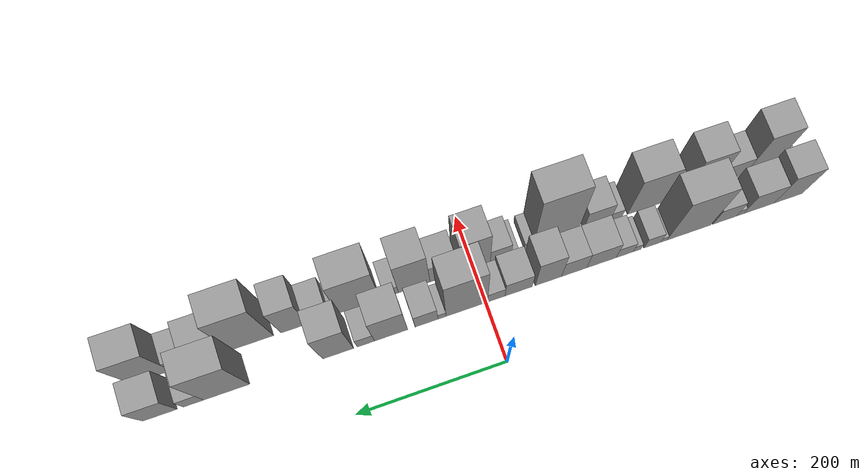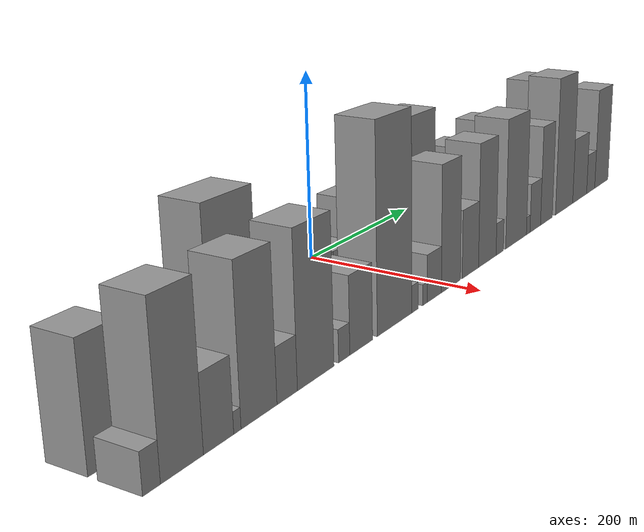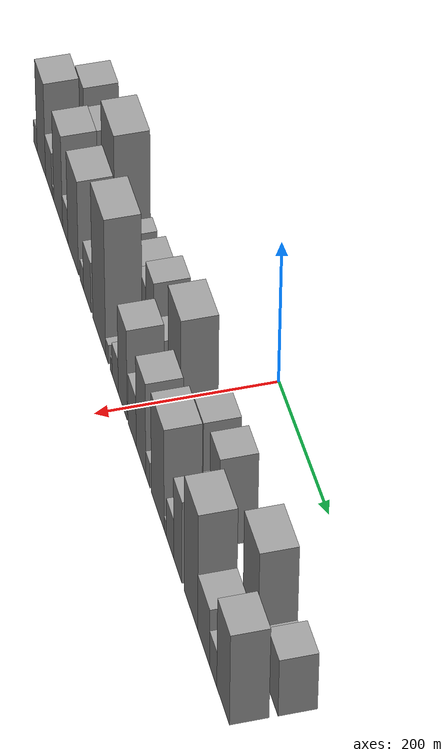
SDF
<sdf version="1.6">
 <world name="default">
  <scene>
   <sky><clouds><speed>12</speed></clouds></sky>
   <ambient>0.4 0.4 0.4 1</ambient>
   <background>0.7 0.7 0.7 1</background>
   <shadows>1</shadows>
  </scene>
  <gravity>0 0 -9.8066</gravity>
  <magnetic_field>6e-06 2.3e-05 -4.2e-05</magnetic_field>
  <physics default="0" name="default_physics" type="ode">
   <ode>
    <solver>
     <type>quick</type>
     <iters>10</iters>
     <sor>1.0</sor>
     <use_dynamic_moi_rescaling>0</use_dynamic_moi_rescaling>
    </solver>
    <constraints>
     <cfm>0</cfm>
     <erp>0.2</erp>
     <contact_max_correcting_vel>100</contact_max_correcting_vel>
     <contact_surface_layer>0.001</contact_surface_layer>
    </constraints>
   </ode>
   <max_step_size>0.004</max_step_size>
   <real_time_factor>1</real_time_factor>
   <real_time_update_rate>250</real_time_update_rate>
  </physics>
  <light name="sun" type="directional">
   <pose>0 0 10 0 0 0</pose>
   <diffuse>0.8 0.8 0.8 1</diffuse>
   <specular>0.2 0.2 0.2 1</specular>
   <attenuation>
    <range>1000</range>
    <constant>0.9</constant>
    <linear>0.01</linear>
    <quadratic>0.001</quadratic>
   </attenuation>
   <direction>-0.5 0.1 -0.9</direction>
  </light>
  <model name="building_1">
   <static>1</static>
   <pose>100.0000 -417.9932 0 0.000000 0.000000 0.000000</pose>
   <link name="link">
    <pose>0 0 51.00 0 0 0</pose>
    <collision name="collision"><geometry><box><size>40.0000 40.0137 102.0000</size></box></geometry></collision>
    <visual name="visual">
     <cast_shadows>0</cast_shadows>
     <geometry><box><size>40.0000 40.0137 102.0000</size></box></geometry>
     <material>
      <script>
       <uri>model://grey_wall/materials/scripts</uri>
       <uri>model://grey_wall/materials/textures</uri>
       <name>vrc/grey_wall</name>
      </script>
     </material>
    </visual>
   </link>
  </model>
  <model name="building_2">
   <static>1</static>
   <pose>100.0000 -376.3989 0 0.000000 0.000000 0.000000</pose>
   <link name="link">
    <pose>0 0 37.50 0 0 0</pose>
    <collision name="collision"><geometry><box><size>40.0000 43.1749 75.0000</size></box></geometry></collision>
    <visual name="visual">
     <cast_shadows>0</cast_shadows>
     <geometry><box><size>40.0000 43.1749 75.0000</size></box></geometry>
     <material>
      <script>
       <uri>model://grey_wall/materials/scripts</uri>
       <uri>model://grey_wall/materials/textures</uri>
       <name>vrc/grey_wall</name>
      </script>
     </material>
    </visual>
   </link>
  </model>
  <model name="building_3">
   <static>1</static>
   <pose>100.0000 -349.9161 0 0.000000 0.000000 0.000000</pose>
   <link name="link">
    <pose>0 0 12.00 0 0 0</pose>
    <collision name="collision"><geometry><box><size>40.0000 9.7908 24.0000</size></box></geometry></collision>
    <visual name="visual">
     <cast_shadows>0</cast_shadows>
     <geometry><box><size>40.0000 9.7908 24.0000</size></box></geometry>
     <material>
      <script>
       <uri>model://grey_wall/materials/scripts</uri>
       <uri>model://grey_wall/materials/textures</uri>
       <name>vrc/grey_wall</name>
      </script>
     </material>
    </visual>
   </link>
  </model>
  <model name="building_4">
   <static>1</static>
   <pose>100.0000 -328.4559 0 0.000000 0.000000 0.000000</pose>
   <link name="link">
    <pose>0 0 30.00 0 0 0</pose>
    <collision name="collision"><geometry><box><size>40.0000 33.1295 60.0000</size></box></geometry></collision>
    <visual name="visual">
     <cast_shadows>0</cast_shadows>
     <geometry><box><size>40.0000 33.1295 60.0000</size></box></geometry>
     <material>
      <script>
       <uri>model://grey_wall/materials/scripts</uri>
       <uri>model://grey_wall/materials/textures</uri>
       <name>vrc/grey_wall</name>
      </script>
     </material>
    </visual>
   </link>
  </model>
  <model name="building_5">
   <static>1</static>
   <pose>100.0000 -278.4447 0 0.000000 0.000000 0.000000</pose>
   <link name="link">
    <pose>0 0 79.50 0 0 0</pose>
    <collision name="collision"><geometry><box><size>40.0000 60.8930 159.0000</size></box></geometry></collision>
    <visual name="visual">
     <cast_shadows>0</cast_shadows>
     <geometry><box><size>40.0000 60.8930 159.0000</size></box></geometry>
     <material>
      <script>
       <uri>model://grey_wall/materials/scripts</uri>
       <uri>model://grey_wall/materials/textures</uri>
       <name>vrc/grey_wall</name>
      </script>
     </material>
    </visual>
   </link>
  </model>
  <model name="building_6">
   <static>1</static>
   <pose>100.0000 -243.5873 0 0.000000 0.000000 0.000000</pose>
   <link name="link">
    <pose>0 0 9.00 0 0 0</pose>
    <collision name="collision"><geometry><box><size>40.0000 8.8217 18.0000</size></box></geometry></collision>
    <visual name="visual">
     <cast_shadows>0</cast_shadows>
     <geometry><box><size>40.0000 8.8217 18.0000</size></box></geometry>
     <material>
      <script>
       <uri>model://grey_wall/materials/scripts</uri>
       <uri>model://grey_wall/materials/textures</uri>
       <name>vrc/grey_wall</name>
      </script>
     </material>
    </visual>
   </link>
  </model>
  <model name="building_7">
   <static>1</static>
   <pose>100.0000 -227.4577 0 0.000000 0.000000 0.000000</pose>
   <link name="link">
    <pose>0 0 21.00 0 0 0</pose>
    <collision name="collision"><geometry><box><size>40.0000 23.4375 42.0000</size></box></geometry></collision>
    <visual name="visual">
     <cast_shadows>0</cast_shadows>
     <geometry><box><size>40.0000 23.4375 42.0000</size></box></geometry>
     <material>
      <script>
       <uri>model://grey_wall/materials/scripts</uri>
       <uri>model://grey_wall/materials/textures</uri>
       <name>vrc/grey_wall</name>
      </script>
     </material>
    </visual>
   </link>
  </model>
  <model name="building_8">
   <static>1</static>
   <pose>100.0000 -206.4050 0 0.000000 0.000000 0.000000</pose>
   <link name="link">
    <pose>0 0 12.00 0 0 0</pose>
    <collision name="collision"><geometry><box><size>40.0000 10.6677 24.0000</size></box></geometry></collision>
    <visual name="visual">
     <cast_shadows>0</cast_shadows>
     <geometry><box><size>40.0000 10.6677 24.0000</size></box></geometry>
     <material>
      <script>
       <uri>model://grey_wall/materials/scripts</uri>
       <uri>model://grey_wall/materials/textures</uri>
       <name>vrc/grey_wall</name>
      </script>
     </material>
    </visual>
   </link>
  </model>
  <model name="building_9">
   <static>1</static>
   <pose>100.0000 -189.1348 0 0.000000 0.000000 0.000000</pose>
   <link name="link">
    <pose>0 0 21.00 0 0 0</pose>
    <collision name="collision"><geometry><box><size>40.0000 23.8727 42.0000</size></box></geometry></collision>
    <visual name="visual">
     <cast_shadows>0</cast_shadows>
     <geometry><box><size>40.0000 23.8727 42.0000</size></box></geometry>
     <material>
      <script>
       <uri>model://grey_wall/materials/scripts</uri>
       <uri>model://grey_wall/materials/textures</uri>
       <name>vrc/grey_wall</name>
      </script>
     </material>
    </visual>
   </link>
  </model>
  <model name="building_10">
   <static>1</static>
   <pose>100.0000 -157.0631 0 0.000000 0.000000 0.000000</pose>
   <link name="link">
    <pose>0 0 34.50 0 0 0</pose>
    <collision name="collision"><geometry><box><size>40.0000 40.2707 69.0000</size></box></geometry></collision>
    <visual name="visual">
     <cast_shadows>0</cast_shadows>
     <geometry><box><size>40.0000 40.2707 69.0000</size></box></geometry>
     <material>
      <script>
       <uri>model://grey_wall/materials/scripts</uri>
       <uri>model://grey_wall/materials/textures</uri>
       <name>vrc/grey_wall</name>
      </script>
     </material>
    </visual>
   </link>
  </model>
  <model name="building_11">
   <static>1</static>
   <pose>100.0000 -119.5732 0 0.000000 0.000000 0.000000</pose>
   <link name="link">
    <pose>0 0 34.50 0 0 0</pose>
    <collision name="collision"><geometry><box><size>40.0000 34.7091 69.0000</size></box></geometry></collision>
    <visual name="visual">
     <cast_shadows>0</cast_shadows>
     <geometry><box><size>40.0000 34.7091 69.0000</size></box></geometry>
     <material>
      <script>
       <uri>model://grey_wall/materials/scripts</uri>
       <uri>model://grey_wall/materials/textures</uri>
       <name>vrc/grey_wall</name>
      </script>
     </material>
    </visual>
   </link>
  </model>
  <model name="building_12">
   <static>1</static>
   <pose>100.0000 -84.4262 0 0.000000 0.000000 0.000000</pose>
   <link name="link">
    <pose>0 0 54.00 0 0 0</pose>
    <collision name="collision"><geometry><box><size>40.0000 35.5850 108.0000</size></box></geometry></collision>
    <visual name="visual">
     <cast_shadows>0</cast_shadows>
     <geometry><box><size>40.0000 35.5850 108.0000</size></box></geometry>
     <material>
      <script>
       <uri>model://grey_wall/materials/scripts</uri>
       <uri>model://grey_wall/materials/textures</uri>
       <name>vrc/grey_wall</name>
      </script>
     </material>
    </visual>
   </link>
  </model>
  <model name="building_13">
   <static>1</static>
   <pose>100.0000 -44.0721 0 0.000000 0.000000 0.000000</pose>
   <link name="link">
    <pose>0 0 31.50 0 0 0</pose>
    <collision name="collision"><geometry><box><size>40.0000 37.1232 63.0000</size></box></geometry></collision>
    <visual name="visual">
     <cast_shadows>0</cast_shadows>
     <geometry><box><size>40.0000 37.1232 63.0000</size></box></geometry>
     <material>
      <script>
       <uri>model://grey_wall/materials/scripts</uri>
       <uri>model://grey_wall/materials/textures</uri>
       <name>vrc/grey_wall</name>
      </script>
     </material>
    </visual>
   </link>
  </model>
  <model name="building_14">
   <static>1</static>
   <pose>100.0000 -13.8164 0 0.000000 0.000000 0.000000</pose>
   <link name="link">
    <pose>0 0 21.00 0 0 0</pose>
    <collision name="collision"><geometry><box><size>40.0000 23.3882 42.0000</size></box></geometry></collision>
    <visual name="visual">
     <cast_shadows>0</cast_shadows>
     <geometry><box><size>40.0000 23.3882 42.0000</size></box></geometry>
     <material>
      <script>
       <uri>model://grey_wall/materials/scripts</uri>
       <uri>model://grey_wall/materials/textures</uri>
       <name>vrc/grey_wall</name>
      </script>
     </material>
    </visual>
   </link>
  </model>
  <model name="building_15">
   <static>1</static>
   <pose>100.0000 25.7957 0 0.000000 0.000000 0.000000</pose>
   <link name="link">
    <pose>0 0 82.50 0 0 0</pose>
    <collision name="collision"><geometry><box><size>40.0000 55.8360 165.0000</size></box></geometry></collision>
    <visual name="visual">
     <cast_shadows>0</cast_shadows>
     <geometry><box><size>40.0000 55.8360 165.0000</size></box></geometry>
     <material>
      <script>
       <uri>model://grey_wall/materials/scripts</uri>
       <uri>model://grey_wall/materials/textures</uri>
       <name>vrc/grey_wall</name>
      </script>
     </material>
    </visual>
   </link>
  </model>
  <model name="building_16">
   <static>1</static>
   <pose>100.0000 59.1433 0 0.000000 0.000000 0.000000</pose>
   <link name="link">
    <pose>0 0 12.00 0 0 0</pose>
    <collision name="collision"><geometry><box><size>40.0000 10.8592 24.0000</size></box></geometry></collision>
    <visual name="visual">
     <cast_shadows>0</cast_shadows>
     <geometry><box><size>40.0000 10.8592 24.0000</size></box></geometry>
     <material>
      <script>
       <uri>model://grey_wall/materials/scripts</uri>
       <uri>model://grey_wall/materials/textures</uri>
       <name>vrc/grey_wall</name>
      </script>
     </material>
    </visual>
   </link>
  </model>
  <model name="building_17">
   <static>1</static>
   <pose>100.0000 79.9001 0 0.000000 0.000000 0.000000</pose>
   <link name="link">
    <pose>0 0 30.00 0 0 0</pose>
    <collision name="collision"><geometry><box><size>40.0000 30.6544 60.0000</size></box></geometry></collision>
    <visual name="visual">
     <cast_shadows>0</cast_shadows>
     <geometry><box><size>40.0000 30.6544 60.0000</size></box></geometry>
     <material>
      <script>
       <uri>model://grey_wall/materials/scripts</uri>
       <uri>model://grey_wall/materials/textures</uri>
       <name>vrc/grey_wall</name>
      </script>
     </material>
    </visual>
   </link>
  </model>
  <model name="building_18">
   <static>1</static>
   <pose>100.0000 127.2307 0 0.000000 0.000000 0.000000</pose>
   <link name="link">
    <pose>0 0 55.50 0 0 0</pose>
    <collision name="collision"><geometry><box><size>40.0000 44.0069 111.0000</size></box></geometry></collision>
    <visual name="visual">
     <cast_shadows>0</cast_shadows>
     <geometry><box><size>40.0000 44.0069 111.0000</size></box></geometry>
     <material>
      <script>
       <uri>model://grey_wall/materials/scripts</uri>
       <uri>model://grey_wall/materials/textures</uri>
       <name>vrc/grey_wall</name>
      </script>
     </material>
    </visual>
   </link>
  </model>
  <model name="building_19">
   <static>1</static>
   <pose>100.0000 160.6374 0 0.000000 0.000000 0.000000</pose>
   <link name="link">
    <pose>0 0 21.00 0 0 0</pose>
    <collision name="collision"><geometry><box><size>40.0000 22.8065 42.0000</size></box></geometry></collision>
    <visual name="visual">
     <cast_shadows>0</cast_shadows>
     <geometry><box><size>40.0000 22.8065 42.0000</size></box></geometry>
     <material>
      <script>
       <uri>model://grey_wall/materials/scripts</uri>
       <uri>model://grey_wall/materials/textures</uri>
       <name>vrc/grey_wall</name>
      </script>
     </material>
    </visual>
   </link>
  </model>
  <model name="building_20">
   <static>1</static>
   <pose>100.0000 197.3976 0 0.000000 0.000000 0.000000</pose>
   <link name="link">
    <pose>0 0 63.00 0 0 0</pose>
    <collision name="collision"><geometry><box><size>40.0000 40.7139 126.0000</size></box></geometry></collision>
    <visual name="visual">
     <cast_shadows>0</cast_shadows>
     <geometry><box><size>40.0000 40.7139 126.0000</size></box></geometry>
     <material>
      <script>
       <uri>model://grey_wall/materials/scripts</uri>
       <uri>model://grey_wall/materials/textures</uri>
       <name>vrc/grey_wall</name>
      </script>
     </material>
    </visual>
   </link>
  </model>
  <model name="building_21">
   <static>1</static>
   <pose>100.0000 343.4150 0 0.000000 0.000000 0.000000</pose>
   <link name="link">
    <pose>0 0 75.00 0 0 0</pose>
    <collision name="collision"><geometry><box><size>40.0000 59.7736 150.0000</size></box></geometry></collision>
    <visual name="visual">
     <cast_shadows>0</cast_shadows>
     <geometry><box><size>40.0000 59.7736 150.0000</size></box></geometry>
     <material>
      <script>
       <uri>model://grey_wall/materials/scripts</uri>
       <uri>model://grey_wall/materials/textures</uri>
       <name>vrc/grey_wall</name>
      </script>
     </material>
    </visual>
   </link>
  </model>
  <model name="building_22">
   <static>1</static>
   <pose>100.0000 386.4422 0 0.000000 0.000000 0.000000</pose>
   <link name="link">
    <pose>0 0 22.50 0 0 0</pose>
    <collision name="collision"><geometry><box><size>40.0000 26.2807 45.0000</size></box></geometry></collision>
    <visual name="visual">
     <cast_shadows>0</cast_shadows>
     <geometry><box><size>40.0000 26.2807 45.0000</size></box></geometry>
     <material>
      <script>
       <uri>model://grey_wall/materials/scripts</uri>
       <uri>model://grey_wall/materials/textures</uri>
       <name>vrc/grey_wall</name>
      </script>
     </material>
    </visual>
   </link>
  </model>
  <model name="building_23">
   <static>1</static>
   <pose>100.0000 429.8051 0 0.000000 0.000000 0.000000</pose>
   <link name="link">
    <pose>0 0 40.50 0 0 0</pose>
    <collision name="collision"><geometry><box><size>40.0000 44.4451 81.0000</size></box></geometry></collision>
    <visual name="visual">
     <cast_shadows>0</cast_shadows>
     <geometry><box><size>40.0000 44.4451 81.0000</size></box></geometry>
     <material>
      <script>
       <uri>model://grey_wall/materials/scripts</uri>
       <uri>model://grey_wall/materials/textures</uri>
       <name>vrc/grey_wall</name>
      </script>
     </material>
    </visual>
   </link>
  </model>
  <model name="building_24">
   <static>1</static>
   <pose>149.0000 -429.4682 0 0.000000 0.000000 0.000000</pose>
   <link name="link">
    <pose>0 0 16.50 0 0 0</pose>
    <collision name="collision"><geometry><box><size>40.0000 17.0636 33.0000</size></box></geometry></collision>
    <visual name="visual">
     <cast_shadows>0</cast_shadows>
     <geometry><box><size>40.0000 17.0636 33.0000</size></box></geometry>
     <material>
      <script>
       <uri>model://grey_wall/materials/scripts</uri>
       <uri>model://grey_wall/materials/textures</uri>
       <name>vrc/grey_wall</name>
      </script>
     </material>
    </visual>
   </link>
  </model>
  <model name="building_25">
   <static>1</static>
   <pose>149.0000 -399.0702 0 0.000000 0.000000 0.000000</pose>
   <link name="link">
    <pose>0 0 67.50 0 0 0</pose>
    <collision name="collision"><geometry><box><size>40.0000 43.7325 135.0000</size></box></geometry></collision>
    <visual name="visual">
     <cast_shadows>0</cast_shadows>
     <geometry><box><size>40.0000 43.7325 135.0000</size></box></geometry>
     <material>
      <script>
       <uri>model://grey_wall/materials/scripts</uri>
       <uri>model://grey_wall/materials/textures</uri>
       <name>vrc/grey_wall</name>
      </script>
     </material>
    </visual>
   </link>
  </model>
  <model name="building_26">
   <static>1</static>
   <pose>149.0000 -360.4197 0 0.000000 0.000000 0.000000</pose>
   <link name="link">
    <pose>0 0 31.50 0 0 0</pose>
    <collision name="collision"><geometry><box><size>40.0000 33.5685 63.0000</size></box></geometry></collision>
    <visual name="visual">
     <cast_shadows>0</cast_shadows>
     <geometry><box><size>40.0000 33.5685 63.0000</size></box></geometry>
     <material>
      <script>
       <uri>model://grey_wall/materials/scripts</uri>
       <uri>model://grey_wall/materials/textures</uri>
       <name>vrc/grey_wall</name>
      </script>
     </material>
    </visual>
   </link>
  </model>
  <model name="building_27">
   <static>1</static>
   <pose>149.0000 -339.3801 0 0.000000 0.000000 0.000000</pose>
   <link name="link">
    <pose>0 0 9.00 0 0 0</pose>
    <collision name="collision"><geometry><box><size>40.0000 8.5107 18.0000</size></box></geometry></collision>
    <visual name="visual">
     <cast_shadows>0</cast_shadows>
     <geometry><box><size>40.0000 8.5107 18.0000</size></box></geometry>
     <material>
      <script>
       <uri>model://grey_wall/materials/scripts</uri>
       <uri>model://grey_wall/materials/textures</uri>
       <name>vrc/grey_wall</name>
      </script>
     </material>
    </visual>
   </link>
  </model>
  <model name="building_28">
   <static>1</static>
   <pose>149.0000 -313.0791 0 0.000000 0.000000 0.000000</pose>
   <link name="link">
    <pose>0 0 66.00 0 0 0</pose>
    <collision name="collision"><geometry><box><size>40.0000 44.0914 132.0000</size></box></geometry></collision>
    <visual name="visual">
     <cast_shadows>0</cast_shadows>
     <geometry><box><size>40.0000 44.0914 132.0000</size></box></geometry>
     <material>
      <script>
       <uri>model://grey_wall/materials/scripts</uri>
       <uri>model://grey_wall/materials/textures</uri>
       <name>vrc/grey_wall</name>
      </script>
     </material>
    </visual>
   </link>
  </model>
  <model name="building_29">
   <static>1</static>
   <pose>149.0000 -277.5965 0 0.000000 0.000000 0.000000</pose>
   <link name="link">
    <pose>0 0 24.00 0 0 0</pose>
    <collision name="collision"><geometry><box><size>40.0000 26.8737 48.0000</size></box></geometry></collision>
    <visual name="visual">
     <cast_shadows>0</cast_shadows>
     <geometry><box><size>40.0000 26.8737 48.0000</size></box></geometry>
     <material>
      <script>
       <uri>model://grey_wall/materials/scripts</uri>
       <uri>model://grey_wall/materials/textures</uri>
       <name>vrc/grey_wall</name>
      </script>
     </material>
    </visual>
   </link>
  </model>
  <model name="building_30">
   <static>1</static>
   <pose>149.0000 -238.1916 0 0.000000 0.000000 0.000000</pose>
   <link name="link">
    <pose>0 0 67.50 0 0 0</pose>
    <collision name="collision"><geometry><box><size>40.0000 51.9361 135.0000</size></box></geometry></collision>
    <visual name="visual">
     <cast_shadows>0</cast_shadows>
     <geometry><box><size>40.0000 51.9361 135.0000</size></box></geometry>
     <material>
      <script>
       <uri>model://grey_wall/materials/scripts</uri>
       <uri>model://grey_wall/materials/textures</uri>
       <name>vrc/grey_wall</name>
      </script>
     </material>
    </visual>
   </link>
  </model>
  <model name="building_31">
   <static>1</static>
   <pose>149.0000 -196.5677 0 0.000000 0.000000 0.000000</pose>
   <link name="link">
    <pose>0 0 15.00 0 0 0</pose>
    <collision name="collision"><geometry><box><size>40.0000 17.3117 30.0000</size></box></geometry></collision>
    <visual name="visual">
     <cast_shadows>0</cast_shadows>
     <geometry><box><size>40.0000 17.3117 30.0000</size></box></geometry>
     <material>
      <script>
       <uri>model://grey_wall/materials/scripts</uri>
       <uri>model://grey_wall/materials/textures</uri>
       <name>vrc/grey_wall</name>
      </script>
     </material>
    </visual>
   </link>
  </model>
  <model name="building_32">
   <static>1</static>
   <pose>149.0000 -169.5741 0 0.000000 0.000000 0.000000</pose>
   <link name="link">
    <pose>0 0 36.00 0 0 0</pose>
    <collision name="collision"><geometry><box><size>40.0000 36.6756 72.0000</size></box></geometry></collision>
    <visual name="visual">
     <cast_shadows>0</cast_shadows>
     <geometry><box><size>40.0000 36.6756 72.0000</size></box></geometry>
     <material>
      <script>
       <uri>model://grey_wall/materials/scripts</uri>
       <uri>model://grey_wall/materials/textures</uri>
       <name>vrc/grey_wall</name>
      </script>
     </material>
    </visual>
   </link>
  </model>
  <model name="building_33">
   <static>1</static>
   <pose>149.0000 -112.5445 0 0.000000 0.000000 0.000000</pose>
   <link name="link">
    <pose>0 0 97.50 0 0 0</pose>
    <collision name="collision"><geometry><box><size>40.0000 61.3836 195.0000</size></box></geometry></collision>
    <visual name="visual">
     <cast_shadows>0</cast_shadows>
     <geometry><box><size>40.0000 61.3836 195.0000</size></box></geometry>
     <material>
      <script>
       <uri>model://grey_wall/materials/scripts</uri>
       <uri>model://grey_wall/materials/textures</uri>
       <name>vrc/grey_wall</name>
      </script>
     </material>
    </visual>
   </link>
  </model>
  <model name="building_34">
   <static>1</static>
   <pose>149.0000 -75.7900 0 0.000000 0.000000 0.000000</pose>
   <link name="link">
    <pose>0 0 13.50 0 0 0</pose>
    <collision name="collision"><geometry><box><size>40.0000 12.1252 27.0000</size></box></geometry></collision>
    <visual name="visual">
     <cast_shadows>0</cast_shadows>
     <geometry><box><size>40.0000 12.1252 27.0000</size></box></geometry>
     <material>
      <script>
       <uri>model://grey_wall/materials/scripts</uri>
       <uri>model://grey_wall/materials/textures</uri>
       <name>vrc/grey_wall</name>
      </script>
     </material>
    </visual>
   </link>
  </model>
  <model name="building_35">
   <static>1</static>
   <pose>149.0000 -56.3730 0 0.000000 0.000000 0.000000</pose>
   <link name="link">
    <pose>0 0 10.50 0 0 0</pose>
    <collision name="collision"><geometry><box><size>40.0000 8.7089 21.0000</size></box></geometry></collision>
    <visual name="visual">
     <cast_shadows>0</cast_shadows>
     <geometry><box><size>40.0000 8.7089 21.0000</size></box></geometry>
     <material>
      <script>
       <uri>model://grey_wall/materials/scripts</uri>
       <uri>model://grey_wall/materials/textures</uri>
       <name>vrc/grey_wall</name>
      </script>
     </material>
    </visual>
   </link>
  </model>
  <model name="building_36">
   <static>1</static>
   <pose>149.0000 -37.6481 0 0.000000 0.000000 0.000000</pose>
   <link name="link">
    <pose>0 0 24.00 0 0 0</pose>
    <collision name="collision"><geometry><box><size>40.0000 28.7408 48.0000</size></box></geometry></collision>
    <visual name="visual">
     <cast_shadows>0</cast_shadows>
     <geometry><box><size>40.0000 28.7408 48.0000</size></box></geometry>
     <material>
      <script>
       <uri>model://grey_wall/materials/scripts</uri>
       <uri>model://grey_wall/materials/textures</uri>
       <name>vrc/grey_wall</name>
      </script>
     </material>
    </visual>
   </link>
  </model>
  <model name="building_37">
   <static>1</static>
   <pose>149.0000 -2.9794 0 0.000000 0.000000 0.000000</pose>
   <link name="link">
    <pose>0 0 64.50 0 0 0</pose>
    <collision name="collision"><geometry><box><size>40.0000 40.5966 129.0000</size></box></geometry></collision>
    <visual name="visual">
     <cast_shadows>0</cast_shadows>
     <geometry><box><size>40.0000 40.5966 129.0000</size></box></geometry>
     <material>
      <script>
       <uri>model://grey_wall/materials/scripts</uri>
       <uri>model://grey_wall/materials/textures</uri>
       <name>vrc/grey_wall</name>
      </script>
     </material>
    </visual>
   </link>
  </model>
  <model name="building_38">
   <static>1</static>
   <pose>149.0000 39.9507 0 0.000000 0.000000 0.000000</pose>
   <link name="link">
    <pose>0 0 36.00 0 0 0</pose>
    <collision name="collision"><geometry><box><size>40.0000 37.2635 72.0000</size></box></geometry></collision>
    <visual name="visual">
     <cast_shadows>0</cast_shadows>
     <geometry><box><size>40.0000 37.2635 72.0000</size></box></geometry>
     <material>
      <script>
       <uri>model://grey_wall/materials/scripts</uri>
       <uri>model://grey_wall/materials/textures</uri>
       <name>vrc/grey_wall</name>
      </script>
     </material>
    </visual>
   </link>
  </model>
  <model name="building_39">
   <static>1</static>
   <pose>149.0000 79.8605 0 0.000000 0.000000 0.000000</pose>
   <link name="link">
    <pose>0 0 66.00 0 0 0</pose>
    <collision name="collision"><geometry><box><size>40.0000 42.5561 132.0000</size></box></geometry></collision>
    <visual name="visual">
     <cast_shadows>0</cast_shadows>
     <geometry><box><size>40.0000 42.5561 132.0000</size></box></geometry>
     <material>
      <script>
       <uri>model://grey_wall/materials/scripts</uri>
       <uri>model://grey_wall/materials/textures</uri>
       <name>vrc/grey_wall</name>
      </script>
     </material>
    </visual>
   </link>
  </model>
  <model name="building_40">
   <static>1</static>
   <pose>149.0000 110.3144 0 0.000000 0.000000 0.000000</pose>
   <link name="link">
    <pose>0 0 18.00 0 0 0</pose>
    <collision name="collision"><geometry><box><size>40.0000 18.3517 36.0000</size></box></geometry></collision>
    <visual name="visual">
     <cast_shadows>0</cast_shadows>
     <geometry><box><size>40.0000 18.3517 36.0000</size></box></geometry>
     <material>
      <script>
       <uri>model://grey_wall/materials/scripts</uri>
       <uri>model://grey_wall/materials/textures</uri>
       <name>vrc/grey_wall</name>
      </script>
     </material>
    </visual>
   </link>
  </model>
  <model name="building_41">
   <static>1</static>
   <pose>149.0000 153.4586 0 0.000000 0.000000 0.000000</pose>
   <link name="link">
    <pose>0 0 72.00 0 0 0</pose>
    <collision name="collision"><geometry><box><size>40.0000 55.9366 144.0000</size></box></geometry></collision>
    <visual name="visual">
     <cast_shadows>0</cast_shadows>
     <geometry><box><size>40.0000 55.9366 144.0000</size></box></geometry>
     <material>
      <script>
       <uri>model://grey_wall/materials/scripts</uri>
       <uri>model://grey_wall/materials/textures</uri>
       <name>vrc/grey_wall</name>
      </script>
     </material>
    </visual>
   </link>
  </model>
  <model name="building_42">
   <static>1</static>
   <pose>149.0000 186.4325 0 0.000000 0.000000 0.000000</pose>
   <link name="link">
    <pose>0 0 10.50 0 0 0</pose>
    <collision name="collision"><geometry><box><size>40.0000 10.0113 21.0000</size></box></geometry></collision>
    <visual name="visual">
     <cast_shadows>0</cast_shadows>
     <geometry><box><size>40.0000 10.0113 21.0000</size></box></geometry>
     <material>
      <script>
       <uri>model://grey_wall/materials/scripts</uri>
       <uri>model://grey_wall/materials/textures</uri>
       <name>vrc/grey_wall</name>
      </script>
     </material>
    </visual>
   </link>
  </model>
  <model name="building_43">
   <static>1</static>
   <pose>149.0000 206.6899 0 0.000000 0.000000 0.000000</pose>
   <link name="link">
    <pose>0 0 28.50 0 0 0</pose>
    <collision name="collision"><geometry><box><size>40.0000 30.5034 57.0000</size></box></geometry></collision>
    <visual name="visual">
     <cast_shadows>0</cast_shadows>
     <geometry><box><size>40.0000 30.5034 57.0000</size></box></geometry>
     <material>
      <script>
       <uri>model://grey_wall/materials/scripts</uri>
       <uri>model://grey_wall/materials/textures</uri>
       <name>vrc/grey_wall</name>
      </script>
     </material>
    </visual>
   </link>
  </model>
  <model name="building_44">
   <static>1</static>
   <pose>149.0000 239.7172 0 0.000000 0.000000 0.000000</pose>
   <link name="link">
    <pose>0 0 58.50 0 0 0</pose>
    <collision name="collision"><geometry><box><size>40.0000 35.5513 117.0000</size></box></geometry></collision>
    <visual name="visual">
     <cast_shadows>0</cast_shadows>
     <geometry><box><size>40.0000 35.5513 117.0000</size></box></geometry>
     <material>
      <script>
       <uri>model://grey_wall/materials/scripts</uri>
       <uri>model://grey_wall/materials/textures</uri>
       <name>vrc/grey_wall</name>
      </script>
     </material>
    </visual>
   </link>
  </model>
  <model name="building_45">
   <static>1</static>
   <pose>149.0000 295.4818 0 0.000000 0.000000 0.000000</pose>
   <link name="link">
    <pose>0 0 82.50 0 0 0</pose>
    <collision name="collision"><geometry><box><size>40.0000 55.9778 165.0000</size></box></geometry></collision>
    <visual name="visual">
     <cast_shadows>0</cast_shadows>
     <geometry><box><size>40.0000 55.9778 165.0000</size></box></geometry>
     <material>
      <script>
       <uri>model://grey_wall/materials/scripts</uri>
       <uri>model://grey_wall/materials/textures</uri>
       <name>vrc/grey_wall</name>
      </script>
     </material>
    </visual>
   </link>
  </model>
  <model name="building_46">
   <static>1</static>
   <pose>149.0000 347.7140 0 0.000000 0.000000 0.000000</pose>
   <link name="link">
    <pose>0 0 40.50 0 0 0</pose>
    <collision name="collision"><geometry><box><size>40.0000 48.4865 81.0000</size></box></geometry></collision>
    <visual name="visual">
     <cast_shadows>0</cast_shadows>
     <geometry><box><size>40.0000 48.4865 81.0000</size></box></geometry>
     <material>
      <script>
       <uri>model://grey_wall/materials/scripts</uri>
       <uri>model://grey_wall/materials/textures</uri>
       <name>vrc/grey_wall</name>
      </script>
     </material>
    </visual>
   </link>
  </model>
  <model name="building_47">
   <static>1</static>
   <pose>149.0000 386.6074 0 0.000000 0.000000 0.000000</pose>
   <link name="link">
    <pose>0 0 25.50 0 0 0</pose>
    <collision name="collision"><geometry><box><size>40.0000 29.3004 51.0000</size></box></geometry></collision>
    <visual name="visual">
     <cast_shadows>0</cast_shadows>
     <geometry><box><size>40.0000 29.3004 51.0000</size></box></geometry>
     <material>
      <script>
       <uri>model://grey_wall/materials/scripts</uri>
       <uri>model://grey_wall/materials/textures</uri>
       <name>vrc/grey_wall</name>
      </script>
     </material>
    </visual>
   </link>
  </model>
  <model name="building_48">
   <static>1</static>
   <pose>149.0000 426.5311 0 0.000000 0.000000 0.000000</pose>
   <link name="link">
    <pose>0 0 64.50 0 0 0</pose>
    <collision name="collision"><geometry><box><size>40.0000 50.5471 129.0000</size></box></geometry></collision>
    <visual name="visual">
     <cast_shadows>0</cast_shadows>
     <geometry><box><size>40.0000 50.5471 129.0000</size></box></geometry>
     <material>
      <script>
       <uri>model://grey_wall/materials/scripts</uri>
       <uri>model://grey_wall/materials/textures</uri>
       <name>vrc/grey_wall</name>
      </script>
     </material>
    </visual>
   </link>
  </model>
 </world>
</sdf>
